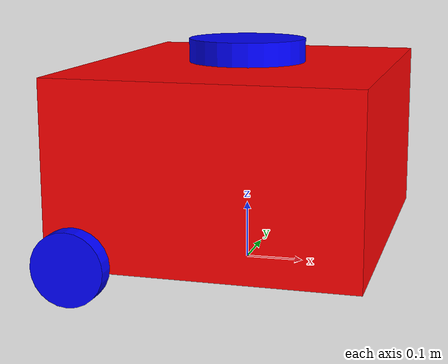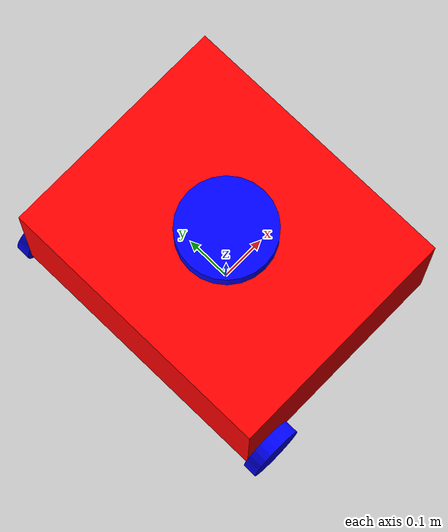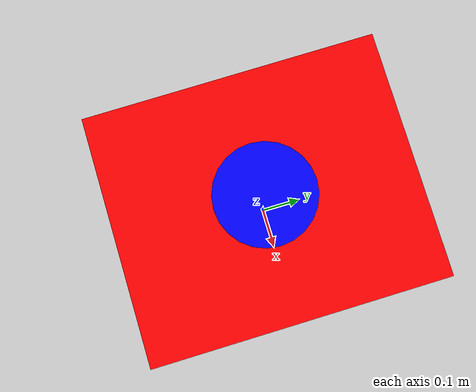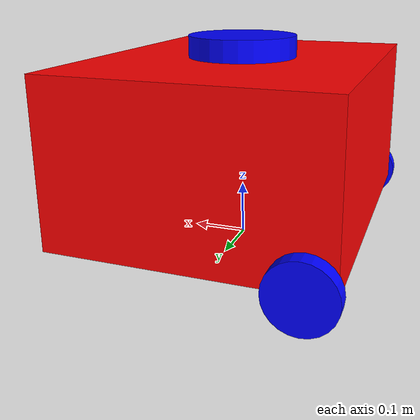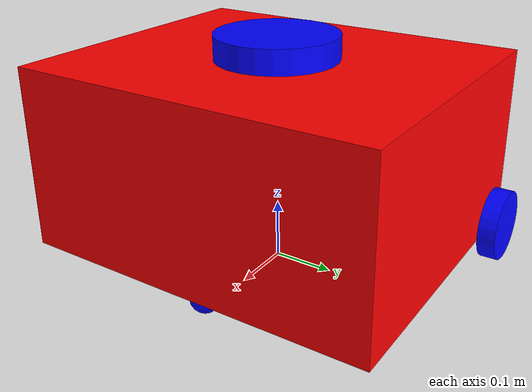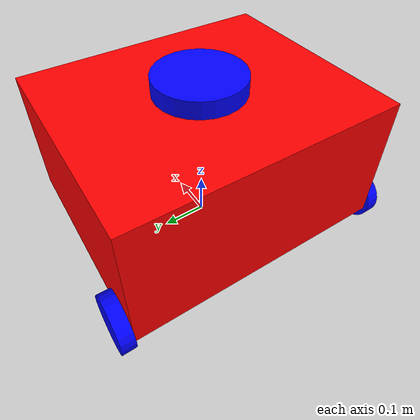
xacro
<?xml version="1.0"?>
<robot name= "my_robot" xmlns:xacro="http://www.ros.org/wiki/xacro">

<!--============ SECTION 1 : PROPRIÉTÉS ============ -->
<xacro:property name="wheel_radius" value="0.06"/>
<xacro:property name="length" value="0.03"/>
<xacro:property name="r_lidar" value="0.1"/>
<xacro:property name="l_lidar" value="0.04"/>
<xacro:property name="a" value="0.5"/>
<xacro:property name="b" value="0.6"/>
<xacro:property name="c" value="0.3"/>
<xacro:property name="radius_wheel_folle" value="0.025"/>
<xacro:property name="d_body" value="1300"/>
<xacro:property name="d_wheels" value="1000"/>

<!--============ MATÉRIAUX ============ -->
<material name="red">
  <color rgba="1 0 0 1.0"/>
</material>
<material name="blue">
  <color rgba="0 0 1 1.0"/>
</material>
<!--=======masses==========-->
<xacro:property name="m_body" value="${d_body*a*b*c}"/>
<xacro:property name="m_wheels" value="${d_wheels*pi*wheel_radius*wheel_radius*length}"/>
<xacro:property name="m_lidar" value="${d_wheels*pi*r_lidar*r_lidar*l_lidar}"/>
<xacro:property name="m_wheel_folle" value="${d_wheels*4/3*pi*radius_wheel_folle*radius_wheel_folle*radius_wheel_folle}"/>
<!--===========inertias==========-->
<xacro:macro name="inertia_box">
<inertial>
    <inertia ixx="${1/12*m_body*(b*b+c*c)}"
             ixy="0"
             ixz="0"
             iyy="${1/12*m_body*(a*a+c*c)}"
             iyz="0"
             izz="${1/12*m_body*(a*a+b*b)}"/>
    <origin xyz="0 0 ${c/2}" rpy="0 0 0"/>
    <mass value="${m_body}"/>
    </inertial>
</xacro:macro>
<xacro:macro name="inertia_cylinder">
   <inertial>
    <inertia ixx="${1/12*m_wheels*(3*wheel_radius*wheel_radius+length*length)}"
             ixy="0"
             ixz="0"
             iyy="${1/12*m_wheels*(3*wheel_radius*wheel_radius+ length*length)}"
             iyz="0"
             izz="${1/2*m_wheels*wheel_radius*wheel_radius}"/>
    <origin xyz="0 0 0" rpy="0 0 0"/>
    <mass value="${m_wheels}"/>
    </inertial>
</xacro:macro>
<xacro:macro name="inertia_lidar">
   <inertial>
    <inertia ixx="${1/12*m_lidar*(3*r_lidar*r_lidar+l_lidar*l_lidar)}"
             ixy="0"
             ixz="0"
             iyy="${1/12*m_lidar*(3*r_lidar*r_lidar+ l_lidar*l_lidar)}"
             iyz="0"
             izz="${1/2*m_lidar*r_lidar*r_lidar}"/>
    <origin xyz="0 0 0" rpy="0 0 0"/>
    <mass value="${m_lidar}"/>
    </inertial>
</xacro:macro>
<xacro:macro name="inertia_sphere">
    <inertial>
    <inertia ixx="${2/5*m_wheel_folle*radius_wheel_folle*radius_wheel_folle}"
             ixy="0"
             ixz="0"
             iyy="${2/5*m_wheel_folle*radius_wheel_folle*radius_wheel_folle}"
             iyz="0"
             izz="${2/5*m_wheel_folle*radius_wheel_folle*radius_wheel_folle}"/>
    <origin xyz="0 0 0" rpy="0 0 0"/>
    <mass value="${m_wheel_folle}"/>
    </inertial>
</xacro:macro>
<xacro:macro name="box_inertial" params="mass size_x size_y size_z">
    <inertial>
      <origin xyz="0 0 0" rpy="0 0 0"/>
      <mass value="${mass}"/>
      <inertia ixx="${mass * (size_y * size_y + size_z * size_z) / 12.0}"
               ixy="0.0"
               ixz="0.0"
               iyy="${mass * (size_x * size_x + size_z * size_z) / 12.0}"
               iyz="0.0"
               izz="${mass * (size_x * size_x + size_y * size_y) / 12.0}"/>
    </inertial>
  </xacro:macro>
<!-- =========== chasis====================== -->
 <link name="base_link">
    <visual>
        <origin xyz="0 0 ${c/2}" rpy="0 0 0" />
        <geometry>
            <box size="${a} ${b} ${c}" />
        </geometry>
        <material name="red"/>

    </visual>
   <collision>
        <geometry>
            <box size="${a} ${b} ${c}" />
        </geometry>
        <origin xyz="0 0 ${c/2}" rpy="0 0 0" />
    </collision>
    <xacro:inertia_box/>
 </link>
<!-- ======== une frame réference ========= -->
<link name="footprint">
<origin xyz="0 0 0" rpy="0 0 0" />
</link>
<joint name="base_footprint" type="fixed">
  <parent link="footprint"/>
  <child link="base_link"/>
  <origin xyz="0 0 0.05" rpy="0 0 0"/>
</joint>
<!-- =========== roue avant gauche====================== -->
<link name="lwheel_link">
    <visual>
        <origin xyz="0 0 0" rpy="0 0 0" />
        <geometry>
            <cylinder radius="${wheel_radius}" length="${length}" />
        </geometry>
        <material name="blue"/>

    </visual>
    <collision>
        <geometry>
            <cylinder radius="${wheel_radius}" length="${length}"/>
        </geometry>
    </collision>
    <xacro:inertia_cylinder/>
</link>
<joint name="lwheel_basejoint" type="continuous">
  <parent link="base_link"/>
  <child link="lwheel_link"/>
  <origin xyz="-${a/2.5} ${(b/2)+length/2} 0.01" rpy="-${pi/2} 0 0"/>
  <axis xyz="0 0 1"/>
</joint>
<!-- =========== roue droite====================== -->
<link name="rwheel_link">
    <visual>
        <origin xyz="0 0 0" rpy="0 0 0" />
        <geometry>
            <cylinder radius="${wheel_radius}" length="${length}" />
        </geometry>
        <material name="blue"/>

    </visual>
    <collision>
        <geometry>
            <cylinder radius="${wheel_radius}" length="${length}"/>
        </geometry>
    </collision>
    <xacro:inertia_cylinder/>
</link>
<joint name="rwheel_basejoint" type="continuous">
  <parent link="base_link"/>
  <child link="rwheel_link"/>
  <origin xyz="-${a/2.5} -${(b/2)+length/2} 0.01" rpy="-${pi/2} 0 0"/>
  <axis xyz="0 0 1"/>
</joint>
<!-- =========== roue devant====================== -->
<link name="fwheel_link">
    <visual>
        <origin xyz="0 0 0" rpy="0 0 0" />
        <geometry>
            <sphere radius="${radius_wheel_folle}" />
        </geometry>
        <material name="blue"/>

    </visual>
    <collision>
        <geometry>
            <sphere radius="${radius_wheel_folle}" />
        </geometry>
    </collision>
    <xacro:inertia_sphere/>
</link>
<joint name="fwheel_basejoint" type="continuous">
  <parent link="base_link"/>
  <child link="fwheel_link"/>
  <origin xyz="${a/2.5} 0 -${radius_wheel_folle}" rpy="0 0 0"/>
  <axis xyz="0 1 0"/>
</joint>
<!--================lidar====================-->
<link name="lidar_link">
  <visual>
   <origin xyz="0 0 0" rpy="0 0 0"/>
   <geometry>
    <cylinder radius="${r_lidar}" length="${l_lidar}"/>
    </geometry>
    <material name="blue"/>
  </visual>
  <collision>
    <geometry>
    <cylinder radius="${r_lidar}" length="${l_lidar}"/>
    </geometry>
  </collision>
  <xacro:inertia_lidar/>
</link>
<joint name="lidar_basejoint" type="revolute">
  <parent link="base_link"/>
  <child link="lidar_link"/>
  <origin xyz="0 0 ${c+l_lidar/2}" rpy="0 0 0"/>
  <axis xyz="0 0 1"/>
  <limit lower="0" upper="0" effort="0" velocity="0"/>
</joint>
  <!-- ===================== IMU ===================== -->
  <link name="imu_link">
    <visual>
      <origin xyz="0 0 0" rpy="0 0 0"/>
      <geometry>
        <box size="0.02 0.02 0.02"/>
      </geometry>
      <material name="blue"/>
    </visual>
    <xacro:box_inertial mass="0.01"
                        size_x="0.02"
                        size_y="0.02"
                        size_z="0.02"/>
  </link>

  <joint name="base_to_imu_joint" type="fixed">
    <parent link="base_link"/>
    <child link="imu_link"/>
    <origin xyz="0.0 0.0 0.0" rpy="0 0 0"/>
  </joint>

<xacro:include filename="$(find xacro_first)/urdf/my_robot.gazebo.xacro"/>
</robot>
